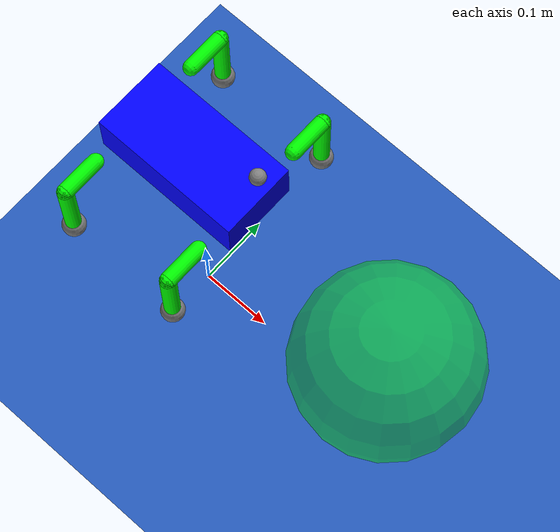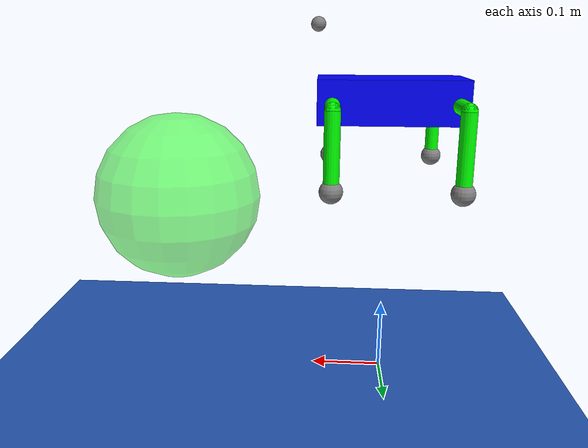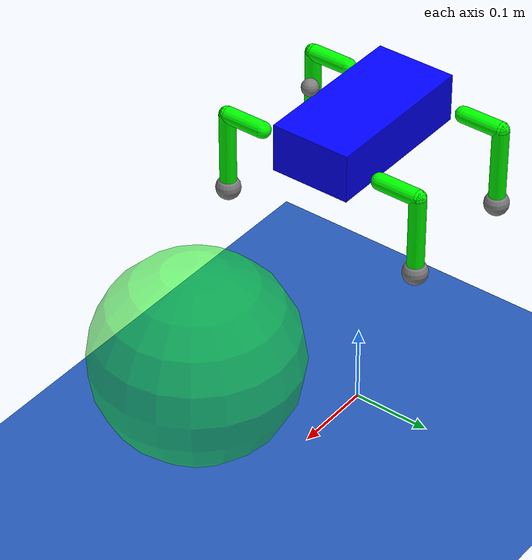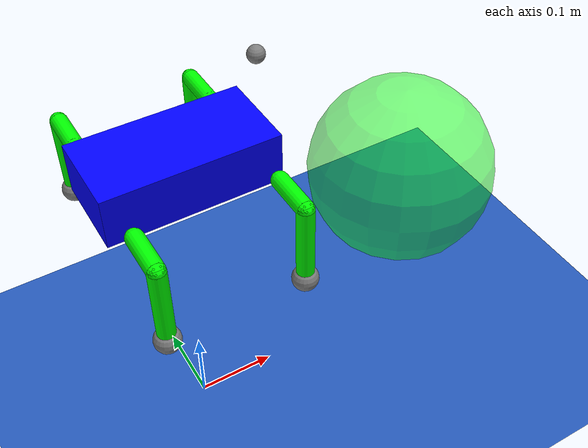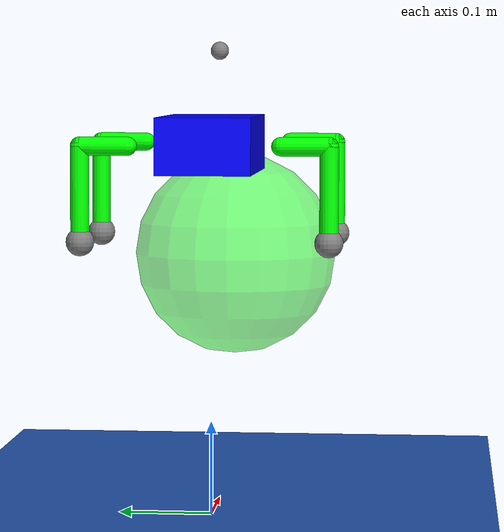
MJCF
<mujoco model="BittleSelfContained">
  <include file="../common.xml"/>

  <option timestep="0.0005"/>

  <custom>
    <!-- agent -->
    <text name="task_transition" data="Bittle|Walk|Trot|Scramble|Flip" />
    <numeric name="agent_planner" data="2 " />
    <numeric name="agent_horizon" data="0.35" />
    <numeric name="agent_timestep" data="0.0005" />
    <numeric name="sampling_spline_points" data="3" />
    <numeric name="sampling_trajectories" data="60"/>
    <numeric name="sampling_exploration" data="0.04" />
    <numeric name="gradient_spline_points" data="5" />

    <!-- residual - IMPORTANT PARAMETERS -->
    <numeric name="residual_select_Gait" data="0"/>
    <text name="residual_list_Gait" data="Stand|Walk|Trot|Canter|Gallop"/>
    <numeric name="residual_select_Gait switch" data="1"/>
    <text name="residual_list_Gait switch" data="Manual|Automatic"/>
    <numeric name="residual_Cadence" data="2 0 4" />
    <numeric name="residual_Amplitude" data=".06 0 0.2" />
    <numeric name="residual_Duty ratio" data="0 0 1"/>
    <numeric name="residual_Walk speed" data="0 0 4"/>
    <numeric name="residual_Walk turn" data="0 -2 2"/>
    <numeric name="residual_select_Flip dir" data="0"/>
    <text name="residual_list_Flip dir" data="Back Flip|Front Flip"/>
    <numeric name="residual_Heading" data="0 -3.14 3.14" />
  </custom>

  <visual>
    <headlight diffuse="0.6 0.6 0.6" ambient="0.3 0.3 0.3" specular="0 0 0"/>
    <global azimuth="-90"/>
  </visual>

  <statistic extent="1" center="0 0 .3"/>

  <worldbody>
    <light pos="0 0 1.5" dir="0 0 -1" diffuse="0.5 0.5 0.5" specular="0.3 0.3 0.3"
      directional="true" castshadow="false"/>
    <geom name="floor" size="0 0 0.1" pos="0 0 -0.001" type="plane" material="blue_grid"/>

    <!-- Add the goal body that the controller expects -->
    <body name="goal" mocap="true" pos=".3 0 0.26">
      <geom size="0.12" contype="0" conaffinity="0" rgba="0 1 0 .5" group="2"/>
    </body>

    <!-- Simple robot model directly in the task -->
    <body name="root" pos="0 0 0.4" quat="1 0 0 0">
      <freejoint name="root"/>
      <site name="imu" size="0.01" pos="0 0 0"/>
      <site name="head" pos=".1 0 0.1" size="0.01"/>
      <inertial pos="0 0 0" mass="0.5" diaginertia="0.01 0.01 0.01"/>

      <!-- Simple geometry instead of meshes -->
      <geom type="box" size="0.1 0.05 0.03" rgba="0 0 1 1"/>

      <!-- Left Front Leg -->
      <body name="left-front-shoulder-link" pos="-0.08 0.08 0">
        <joint name="left-front-shoulder-joint" axis="0 0 1" range="-1.57 1.57"/>
        <geom type="capsule" size="0.01" fromto="0 0 0 0 0.05 0" rgba="0 1 0 1"/>
        <body name="left-front-knee-link" pos="0 0.05 0">
          <joint name="left-front-knee-joint" axis="1 0 0" range="-1.57 1.57"/>
          <geom name="left_front_knee_c" type="capsule" size="0.01" fromto="0 0 0 0 0 -0.1" rgba="0 1 0 1"/>
          <site name="LF_foot" pos="0 0 -0.1" size="0.015"/>
        </body>
      </body>

      <!-- Left Back Leg -->
      <body name="left-back-shoulder-link" pos="-0.08 -0.08 0">
        <joint name="left-back-shoulder-joint" axis="0 0 1" range="-1.57 1.57"/>
        <geom type="capsule" size="0.01" fromto="0 0 0 0 -0.05 0" rgba="0 1 0 1"/>
        <body name="left-back-knee-link" pos="0 -0.05 0">
          <joint name="left-back-knee-joint" axis="1 0 0" range="-1.57 1.57"/>
          <geom name="left_back_knee_c" type="capsule" size="0.01" fromto="0 0 0 0 0 -0.1" rgba="0 1 0 1"/>
          <site name="LB_foot" pos="0 0 -0.1" size="0.015"/>
        </body>
      </body>

      <!-- Right Front Leg -->
      <body name="right-front-shoulder-link" pos="0.08 0.08 0">
        <joint name="right-front-shoulder-joint" axis="0 0 1" range="-1.57 1.57"/>
        <geom type="capsule" size="0.01" fromto="0 0 0 0 0.05 0" rgba="0 1 0 1"/>
        <body name="right-front-knee-link" pos="0 0.05 0">
          <joint name="right-front-knee-joint" axis="1 0 0" range="-1.57 1.57"/>
          <geom name="right_front_knee_c" type="capsule" size="0.01" fromto="0 0 0 0 0 -0.1" rgba="0 1 0 1"/>
          <site name="RF_foot" pos="0 0 -0.1" size="0.015"/>
        </body>
      </body>

      <!-- Right Back Leg -->
      <body name="right-back-shoulder-link" pos="0.08 -0.08 0">
        <joint name="right-back-shoulder-joint" axis="0 0 1" range="-1.57 1.57"/>
        <geom type="capsule" size="0.01" fromto="0 0 0 0 -0.05 0" rgba="0 1 0 1"/>
        <body name="right-back-knee-link" pos="0 -0.05 0">
          <joint name="right-back-knee-joint" axis="1 0 0" range="-1.57 1.57"/>
          <geom name="right_back_knee_c" type="capsule" size="0.01" fromto="0 0 0 0 0 -0.1" rgba="0 1 0 1"/>
          <site name="RB_foot" pos="0 0 -0.1" size="0.015"/>
        </body>
      </body>
    </body> <!-- THIS CLOSING TAG WAS MISSING -->
  </worldbody>

  <actuator>
    <general name="left-front-shoulder" joint="left-front-shoulder-joint" ctrllimited="true" ctrlrange="-1 1" gainprm="40"/>
    <general name="left-front-knee" joint="left-front-knee-joint" ctrllimited="true" ctrlrange="-1 1" gainprm="40"/>
    <general name="left-back-shoulder" joint="left-back-shoulder-joint" ctrllimited="true" ctrlrange="-1 1" gainprm="40"/>
    <general name="left-back-knee" joint="left-back-knee-joint" ctrllimited="true" ctrlrange="-1 1" gainprm="40"/>
    <general name="right-front-shoulder" joint="right-front-shoulder-joint" ctrllimited="true" ctrlrange="-1 1" gainprm="40"/>
    <general name="right-front-knee" joint="right-front-knee-joint" ctrllimited="true" ctrlrange="-1 1" gainprm="40"/>
    <general name="right-back-shoulder" joint="right-back-shoulder-joint" ctrllimited="true" ctrlrange="-1 1" gainprm="40"/>
    <general name="right-back-knee" joint="right-back-knee-joint" ctrllimited="true" ctrlrange="-1 1" gainprm="40"/>
  </actuator>

  <sensor>
    <user name="Upright" dim="3" user="6 1 0 3 0.05" />
    <user name="Height" dim="1" user="6 1 0 3 0.04" />
    <user name="Position" dim="3" user="2 0.2 0 0.5 0.1" />
    <user name="Balance" dim="2" user="2 0.2 0 0.3 0.1" />
    <user name="Effort" dim="8" user="0 0.03 0.0 0.1" />
    <user name="Posture" dim="8" user="0 0.02 0.0 0.1" />
    <user name="Orientation" dim="2" user="0 0 0 .03" />
    <user name="Angmom" dim="3" user="0 0 0 .03" />

    <framepos name="torso_pos" objtype="site" objname="imu" />
    <subtreecom name="torso_subtreecom" body="root"/>
    <subtreelinvel name="torso_subtreelinvel" body="root"/>
    <subtreeangmom name="torso_angmom" body="root"/>
  </sensor>

  <keyframe>
    <key name="home" qpos="0 0 0.4 1 0 0 0 0 0 0 0 0 0 0 0"/>
    <key name="crouch" qpos="0 0 0.25 1 0 0 0 0.3 0.9 0.3 0.9 0.3 0.9 0.3 0.9"/>
  </keyframe>
</mujoco>

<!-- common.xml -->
<mujoco>

  <visual>
    <headlight ambient=".4 .4 .4" diffuse=".8 .8 .8" specular="0.1 0.1 0.1"/>
    <map znear=".01"/>
    <quality shadowsize="2048"/>
    <global elevation="-.25" />
  </visual>

  <asset>
    <texture name="blue_grid" type="2d" builtin="checker" rgb1=".02 .14 .44" rgb2=".27 .55 1" width="300" height="300" mark="edge" markrgb="1 1 1"/>
    <material name="blue_grid" texture="blue_grid" texrepeat="1 1" texuniform="true" reflectance=".2"/>

    <texture name="grey_grid" type="2d" builtin="checker" rgb1=".26 .26 .26" rgb2=".6 .6 .6" width="300" height="300" mark="edge" markrgb="1 1 1"/>
    <material name="grey_grid" texture="grey_grid" texrepeat="1 1" texuniform="true" reflectance=".2"/>
    <texture name="skybox" type="skybox" builtin="gradient" rgb1=".66 .79 1" rgb2=".9 .91 .93" width="800" height="800"/>

    <material name="self" rgba=".7 .5 .3 1"/>
    <material name="self_default" rgba=".7 .7 .4 1"/>
    <material name="self_highlight" rgba="0 .5 .3 1"/>
    <material name="effector" rgba=".7 .4 .2 1"/>
    <material name="effector_default" rgba=".7 .4 .2 1"/>
    <material name="effector_highlight" rgba="0 .5 .3 1"/>
    <material name="decoration" rgba=".2 .6 .3 1"/>
    <material name="eye" rgba="0 .2 1 1"/>
    <material name="target" rgba=".6 .3 .3 1"/>
    <material name="target_default" rgba=".6 .3 .3 1"/>
    <material name="target_highlight" rgba=".6 .3 .3 .4"/>
    <material name="site" rgba=".5 .5 .5 .3"/>
  </asset>
</mujoco>
